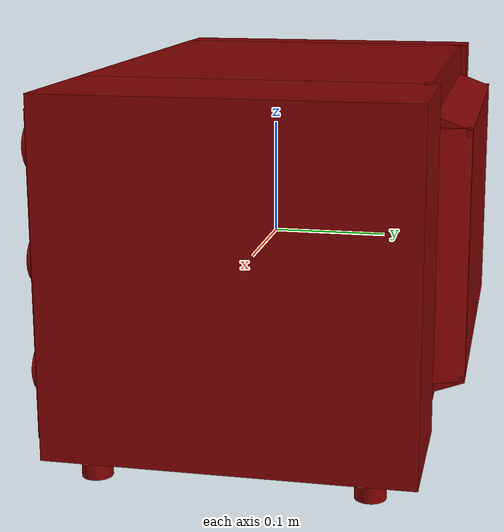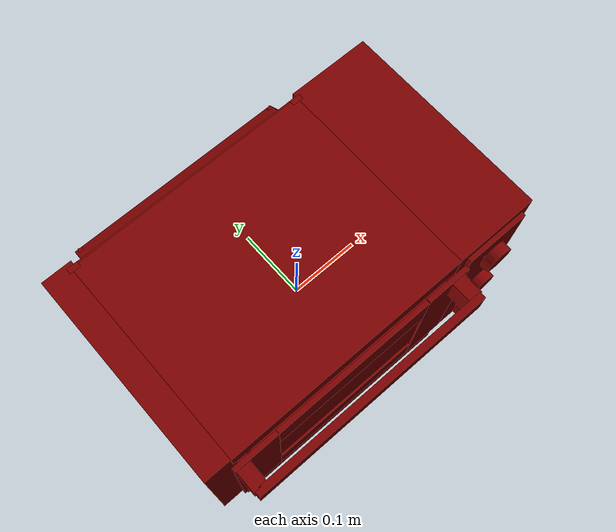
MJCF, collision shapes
<?xml version='1.0' encoding='UTF-8'?>
<mujoco model="model">
  <compiler angle="radian"/>
  <asset>
    <mesh file="visuals/Body001.obj" name="Body001_vis"/>
    <mesh file="visuals/Container001.obj" name="Container001_vis"/>
    <mesh file="visuals/Door001.obj" name="Door001_vis"/>
    <mesh file="visuals/Door001_Clear.obj" name="Door001_Clear_vis"/>
    <mesh file="visuals/Knob001.obj" name="Knob001_vis"/>
    <mesh file="visuals/Knob002.obj" name="Knob002_vis"/>
    <mesh file="visuals/Knob003.obj" name="Knob003_vis"/>
    <texture file="visuals/T_BC001.png" name="Body001_material" type="2d"/>
    <material name="Body001_material" rgba="1 1 1 1.0" texture="Body001_material" shininess="0.4472135901451111" specular="0.3103448502657381"/>
    <texture file="visuals/T_BC001.png" name="Container001_material" type="2d"/>
    <material name="Container001_material" rgba="1 1 1 1.0" texture="Container001_material" shininess="0.4472135901451111" specular="0.3103448502657381"/>
    <texture file="visuals/T_BC001.png" name="Door001_material" type="2d"/>
    <material name="Door001_material" rgba="1 1 1 1.0" texture="Door001_material" shininess="0.4472135901451111" specular="0.3103448502657381"/>
    <texture file="visuals/T_BC001.png" name="Door001_Clear_material" type="2d"/>
    <material name="Door001_Clear_material" rgba="1 1 1 0.800000011920929" texture="Door001_Clear_material" shininess="0.4472135901451111" specular="0.3103448502657381"/>
    <texture file="visuals/T_BC001.png" name="Knob001_material" type="2d"/>
    <material name="Knob001_material" rgba="1 1 1 1.0" texture="Knob001_material" shininess="0.4472135901451111" specular="0.3103448502657381"/>
    <texture file="visuals/T_BC001.png" name="Knob002_material" type="2d"/>
    <material name="Knob002_material" rgba="1 1 1 1.0" texture="Knob002_material" shininess="0.4472135901451111" specular="0.3103448502657381"/>
    <texture file="visuals/T_BC001.png" name="Knob003_material" type="2d"/>
    <material name="Knob003_material" rgba="1 1 1 1.0" texture="Knob003_material" shininess="0.4472135901451111" specular="0.3103448502657381"/>
  </asset>
  <default>
    <default class="visual">
      <geom conaffinity="0" contype="0" group="1" type="mesh"/>
    </default>
    <default class="collision">
      <geom group="0" rgba="0.5 0 0 0.5"/>
    </default>
    <default class="spawn">
      <geom group="0" rgba="1 1 1 0.5" contype="0" conaffinity="0"/>
      <site group="0" rgba="1 1 1 0.5"/>
    </default>
    <default class="region">
      <geom group="1" conaffinity="0" contype="0" rgba="0 1 0 0"/>
    </default>
  </default>
  <worldbody>
    <body>
      <body name="object">
        <geom mesh="Body001_vis" type="mesh" solimp="0.998 0.998 0.001" solref="0.001 1" density="100" friction="0.95 0.3 0.1" class="visual" material="Body001_material"/>
        <geom class="collision" type="box" pos="-0.2291344553232193 0.01026891078799963 0.009272522293031216" size="0.020959412679076195 0.14795352518558502 0.144661545753479" quat="1.0 0.0 0.0 0.0"/>
        <geom class="collision" type="box" pos="0.19071297347545624 0.009946533478796482 0.009272522293031216" size="0.05938087776303291 0.14827591180801392 0.144661545753479" quat="1.0 0.0 0.0 0.0"/>
        <geom class="collision" type="box" pos="-0.04090869426727295 0.18012826144695282 0.009302927181124687" size="0.003083076560869813 0.1486077457666397 0.10513849556446075" quat="0.7071068286895752 0.0 0.0 0.7071067094802856"/>
        <geom class="collision" type="box" pos="-0.04090869426727295 0.006192016415297985 0.13888375461101532" size="0.015050324611365795 0.17270508408546448 0.14469195902347565" quat="0.5 0.5 -0.4999999701976776 0.5"/>
        <geom class="collision" type="box" pos="-0.04090869426727295 0.013177791610360146 -0.09805627912282944" size="0.0214542243629694 0.17270508408546448 0.14053134620189667" quat="0.5 0.5 -0.4999999701976776 0.5"/>
        <geom class="collision" type="box" pos="-0.1965753734111786 0.02429427206516266 -0.005125303752720356" size="0.013140195049345493 0.0921156033873558 0.00394660048186779" quat="1.0 0.0 0.0 0.0"/>
        <geom class="collision" type="box" pos="0.12132398039102554 0.02429427206516266 -0.005125303752720356" size="0.013140195049345493 0.0921156033873558 0.00394660048186779" quat="1.0 0.0 0.0 0.0"/>
        <geom class="collision" type="box" pos="-0.04090869426727295 -0.13197186589241028 -0.12177293747663498" size="0.012961158528923988 0.17270508408546448 0.013457115739583969" quat="0.5 0.5 -0.4999999701976776 0.5"/>
        <geom class="collision" type="box" pos="-0.04090869426727295 0.138325497508049 -0.12217225879430771" size="0.013360483571887016 0.17270508408546448 0.006978709250688553" quat="0.5 0.5 -0.4999999701976776 0.5"/>
        <geom class="collision" type="cylinder" pos="-0.22020751237869263 -0.09926024079322815 -0.14432883262634277" size="0.012536659836769104 0.00904157292097807" quat="1.0 0.0 0.0 0.0"/>
        <geom class="collision" type="cylinder" pos="0.22734780609607697 -0.09926024079322815 -0.14432883262634277" size="0.012536659836769104 0.00904157292097807" quat="1.0 0.0 0.0 0.0"/>
        <geom class="collision" type="cylinder" pos="-0.22020751237869263 0.11993732303380966 -0.14432883262634277" size="0.012536659836769104 0.00904157292097807" quat="1.0 0.0 0.0 0.0"/>
        <geom class="collision" type="cylinder" pos="0.22734780609607697 0.11993732303380966 -0.14432883262634277" size="0.012536659836769104 0.00904157292097807" quat="1.0 0.0 0.0 0.0"/>
        <geom class="collision" type="box" pos="-0.04090869426727295 0.14905086159706116 0.13775868713855743" size="0.003952865023165941 0.17270508408546448 0.015989309176802635" quat="0.7071068286895752 0.0 0.0 0.7071067094802856"/>
        <geom class="collision" type="box" pos="0.12904879450798035 0.14905086159706116 0.009302927181124687" size="0.003952865023165941 0.0076202345080673695 0.14469195902347565" quat="0.7071068286895752 0.0 0.0 0.7071067094802856"/>
        <geom class="collision" type="box" pos="-0.21083781123161316 0.14905086159706116 0.009302927181124687" size="0.003952865023165941 0.0076202345080673695 0.14469195902347565" quat="0.7071068286895752 0.0 0.0 0.7071067094802856"/>
        <geom class="collision" type="box" pos="-0.04090869426727295 0.14905086159706116 -0.11863546818494797" size="0.003952865023165941 0.17270508408546448 0.015989309176802635" quat="0.7071068286895752 0.0 0.0 0.7071067094802856"/>
        <geom class="collision" type="box" pos="-0.04090869426727295 0.16681279242038727 0.11776731163263321" size="0.0030830767937004566 0.15537603199481964 0.016231082379817963" quat="0.5802908539772034 0.4040576219558716 -0.4040575325489044 0.5802908539772034"/>
        <geom class="collision" type="box" pos="-0.04090869426727295 0.16681279242038727 -0.09957920014858246" size="0.0030830767937004566 0.15537603199481964 0.016231084242463112" quat="0.4040575921535492 0.5802907943725586 0.5802909731864929 -0.40405747294425964"/>
        <geom class="collision" type="box" pos="0.11545715481042862 0.16681280732154846 0.010433156043291092" size="0.003083077259361744 0.10665188729763031 0.016231082379817963" quat="0.6960394382476807 0.6960394382476807 0.12461594492197037 0.12461571395397186"/>
        <geom class="collision" type="box" pos="-0.1940702199935913 0.16681280732154846 0.010433156043291092" size="0.0030830767937004566 0.10665188729763031 0.016231082379817963" quat="0.12461601197719574 -0.12461569160223007 -0.696039617061615 0.6960392594337463"/>
        <geom class="collision" type="box" pos="0.19071297347545624 -0.14158494770526886 0.009272522293031216" size="0.04586336016654968 0.003015407593920827 0.13143034279346466" quat="7.549790126404332e-08 0.0 1.0 0.0"/>
        <body name="Container001">
          <joint axis="0.0 -1.0 0.0" pos="-0.0380043089389801 0.026126787066459656 -0.006667387206107378" limited="true" name="Container001_joint" range="0.0 0.15" type="slide" damping="1" frictionloss="1" armature=".01" stiffness="0.05"/>
          <geom mesh="Container001_vis" type="mesh" solimp="0.998 0.998 0.001" solref="0.001 1" density="100" friction="0.95 0.3 0.1" class="visual" material="Container001_material"/>
          <geom class="collision" type="box" pos="-0.0380043089389801 0.026126787066459656 -0.014925883151590824" size="0.1349877119064331 0.08491960167884827 0.0009717044304125011" quat="7.549790126404332e-08 0.0 0.0 1.0"/>
          <geom class="collision" type="box" pos="0.10077929496765137 0.026126788929104805 -0.0067277634516358376" size="0.00943481083959341 0.08491962403059006 0.0009717045468278229" quat="1.1490065077168765e-07 -0.5372996926307678 2.7209084763057945e-08 0.8433914184570312"/>
          <geom class="collision" type="box" pos="-0.17678791284561157 0.026126788929104805 -0.0067277634516358376" size="0.009434811770915985 0.08491962403059006 0.0009717046050354838" quat="0.8433914184570312 1.013020245466123e-08 0.537299633026123 -8.809220730654488e-08"/>
          <geom class="collision" type="box" pos="-0.03800429031252861 0.11230186372995377 -0.006727760192006826" size="0.009101909585297108 0.13755109906196594 0.0009717045468278229" quat="0.5416749119758606 0.45451968908309937 0.4545193314552307 -0.5416755080223083"/>
          <geom class="collision" type="box" pos="-0.0380043163895607 -0.06004829704761505 -0.006727760192006826" size="0.009101909585297108 0.13755109906196594 0.0009717045468278229" quat="0.5416749119758606 -0.4545198082923889 0.45451927185058594 0.5416753888130188"/>
        </body>
        <body name="Door001">
          <joint axis="1.0 0.0 0.0" pos="-0.03727241978049278 -0.1472281962633133 -0.10600089281797409" limited="true" name="Door001_joint" range="0.0 1.5707963267948966" type="hinge" damping="1" frictionloss="1" armature=".01" stiffness="0.8" springref="-0.1"/>
          <geom mesh="Door001_vis" type="mesh" solimp="0.998 0.998 0.001" solref="0.001 1" density="100" friction="0.95 0.3 0.1" class="visual" material="Door001_material"/>
          <geom class="collision" type="box" pos="0.11126821488142014 -0.14404182136058807 0.013492166064679623" size="0.03221612423658371 0.0031784046441316605 0.11267673969268799" quat="1.0 0.0 0.0 0.0"/>
          <geom class="collision" type="box" pos="-0.18622033298015594 -0.14404182136058807 0.013492166064679623" size="0.03221612423658371 0.0031784046441316605 0.11267673969268799" quat="1.0 0.0 0.0 0.0"/>
          <geom class="collision" type="box" pos="-0.03778919577598572 -0.14404183626174927 0.09673970937728882" size="0.029244357720017433 0.003178396262228489 0.11613579094409943" quat="0.70710688829422 -4.750302551315144e-08 0.7071066498756409 4.750301130229673e-08"/>
          <geom class="collision" type="box" pos="-0.03778919577598572 -0.14404182136058807 -0.07531752437353134" size="0.02347523160278797 0.003178396262228489 0.11613579094409943" quat="0.70710688829422 -4.750302551315144e-08 0.7071066498756409 4.750301130229673e-08"/>
          <geom class="collision" type="box" pos="-0.03685232996940613 -0.13841983675956726 0.1081024631857872" size="0.008172879926860332 0.004333500284701586 0.15269410610198975" quat="0.70710688829422 -4.750302551315144e-08 0.7071066498756409 4.750301130229673e-08"/>
          <geom class="collision" type="box" pos="-0.03685232996940613 -0.13841983675956726 -0.08775503933429718" size="0.008172879926860332 0.004333500284701586 0.15269410610198975" quat="0.70710688829422 -4.750302551315144e-08 0.7071066498756409 4.750301130229673e-08"/>
          <geom class="collision" type="box" pos="0.11054257303476334 -0.13841982185840607 0.013447928242385387" size="0.007687642239034176 0.004333500284701586 0.09639552235603333" quat="1.0 -1.1109633314210568e-14 -5.960463056453591e-08 -6.717942113709796e-08"/>
          <geom class="collision" type="box" pos="-0.18417665362358093 -0.13841982185840607 0.013447928242385387" size="0.007687642239034176 0.004333500284701586 0.09639552235603333" quat="1.0 -1.1109633314210568e-14 -5.960463056453591e-08 -6.717942113709796e-08"/>
          <geom class="collision" type="box" pos="-0.20669542253017426 -0.1605810821056366 0.10311038792133331" size="0.00979373324662447 0.01630985178053379 0.018314165994524956" quat="1.0 -1.1109633314210568e-14 -5.960463056453591e-08 -6.717942824252532e-08"/>
          <geom class="collision" type="box" pos="0.12642592191696167 -0.1605810821056366 0.10311038792133331" size="0.00979373324662447 0.01630985178053379 0.018314165994524956" quat="1.0 -1.1109633314210568e-14 -5.960463056453591e-08 -6.717942824252532e-08"/>
          <geom class="collision" type="box" pos="-0.04021008685231209 -0.17981499433517456 0.10311038792133331" size="0.17446991801261902 0.004895817954093218 0.018314165994524956" quat="1.0 -1.1109633314210568e-14 -5.960463056453591e-08 -6.717942113709796e-08"/>
          <body name="Door001_Clear">
            <geom mesh="Door001_Clear_vis" type="mesh" solimp="0.998 0.998 0.001" solref="0.001 1" density="100" friction="0.95 0.3 0.1" class="visual" material="Door001_Clear_material"/>
            <geom class="collision" type="box" pos="-0.037272483110427856 -0.14383536577224731 0.007802197244018316" size="0.1797875016927719 0.0004939892096444964 0.09210919588804245" quat="1.0 0.0 0.0 0.0"/>
          </body>
        </body>
        <body name="Knob001">
          <joint axis="0.0 1.0 0.0" pos="0.18725420534610748 -0.15263332426548004 0.10508984327316284" limited="true" name="Knob001_joint" range="0.0 4.014257279586958" type="hinge" damping="0.05" armature="0.001"/>
          <geom mesh="Knob001_vis" type="mesh" solimp="0.998 0.998 0.001" solref="0.001 1" density="100" friction="0.95 0.3 0.1" class="visual" material="Knob001_material"/>
          <geom class="collision" type="cylinder" pos="0.18725420534610748 -0.15349751710891724 0.10508984327316284" size="0.019576426595449448 0.006852371152490377" quat="0.7071068286895752 0.7071067690849304 -1.5700922994638892e-16 -5.926933650839829e-24"/>
        </body>
        <body name="Knob002">
          <joint axis="0.0 1.0 0.0" pos="0.18725420534610748 -0.15263330936431885 0.012837431393563747" limited="true" name="Knob002_joint" range="0.0 3.2288591161895095" type="hinge" damping="0.05" armature="0.001"/>
          <geom mesh="Knob002_vis" type="mesh" solimp="0.998 0.998 0.001" solref="0.001 1" density="100" friction="0.95 0.3 0.1" class="visual" material="Knob002_material"/>
          <geom class="collision" type="cylinder" pos="0.18725420534610748 -0.15349750220775604 0.012837433256208897" size="0.019576426595449448 0.006852371152490377" quat="0.7071068286895752 0.7071067690849304 -1.5700922994638892e-16 -5.926933650839829e-24"/>
        </body>
        <body name="Knob003">
          <joint axis="0.0 1.0 0.0" pos="0.18725459277629852 -0.15263329446315765 -0.07912534475326538" limited="true" name="Knob003_joint" range="0.0 3.2288591161895095" type="hinge" damping="0.05" armature="0.001"/>
          <geom mesh="Knob003_vis" type="mesh" solimp="0.998 0.998 0.001" solref="0.001 1" density="100" friction="0.95 0.3 0.1" class="visual" material="Knob003_material"/>
          <geom class="collision" type="cylinder" pos="0.18725459277629852 -0.15349748730659485 -0.07912533730268478" size="0.019576426595449448 0.006852371152490377" quat="0.7071068286895752 0.7071067690849304 -1.5700922994638892e-16 -5.926933650839829e-24"/>
        </body>
        <geom class="region" name="reg_main" type="box" pos="-7.450580596923828e-09 0.018439926207065582 0.0" size="0.25009384751319885 0.16566014289855957 0.1539340764284134"/>
        <geom class="region" name="reg_int" type="box" pos="-0.0377565398812294 0.013911761343479156 0.022297527641057968" size="0.17145904153585434 0.1342332884669304 0.09973156824707985"/>
      </body>
    </body>
  </worldbody>
  <actuator>
    <motor name="Container001_joint_actuator" joint="Container001_joint" gear="10"/>
    <motor name="Door001_joint_actuator" joint="Door001_joint" gear="50"/>
    <motor name="Knob001_joint_actuator" joint="Knob001_joint" gear="50"/>
    <motor name="Knob002_joint_actuator" joint="Knob002_joint" gear="50"/>
    <motor name="Knob003_joint_actuator" joint="Knob003_joint" gear="50"/>
  </actuator>
</mujoco>
